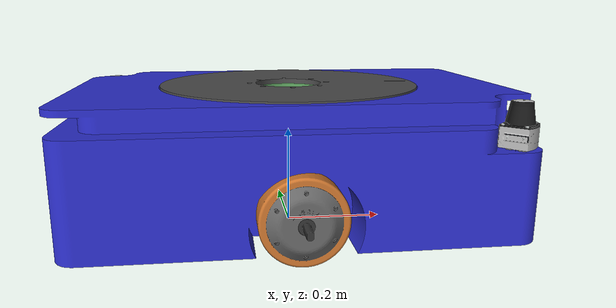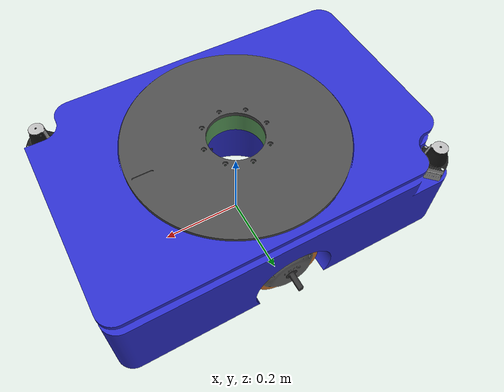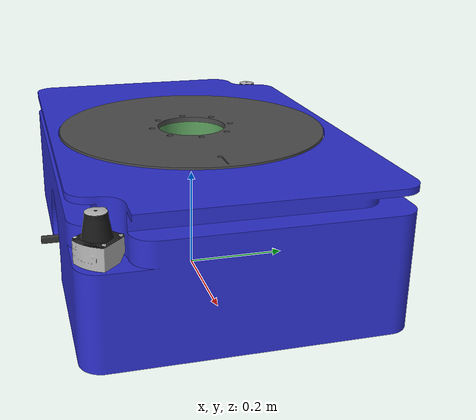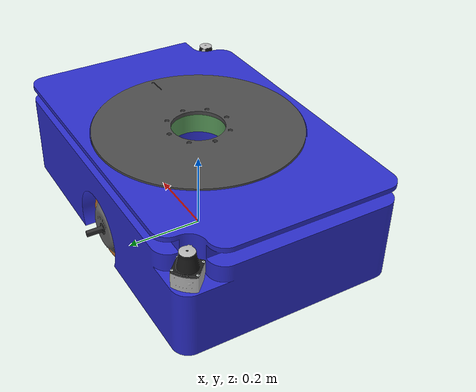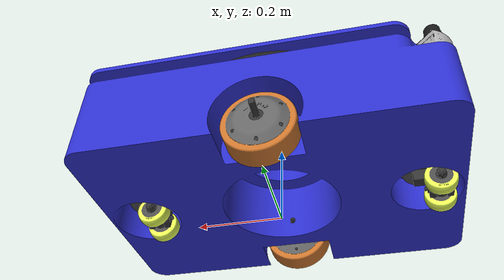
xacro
<?xml version="1.0"?>
<robot name="thirabot_k10" xmlns:xacro="http://www.ros.org/wiki/xacro">

    <xacro:include filename="$(find k3_test_description)/urdf/gazebo.urdf.xacro"/>
    <xacro:include filename="$(find k3_test_description)/urdf/inertia_macro.urdf.xacro"/>
    <xacro:include filename="$(find k3_test_description)/urdf/insert_transmission.urdf.xacro"/>

    <link name="base_footprint"/>
    <link name="base_link">
        <visual>
            <origin xyz="0 0 0" rpy="0 0 0"/>
            <geometry>
                <mesh filename="package://k3_test_description/meshes/main_frame.dae" scale="1 1 1"/>
            </geometry>
        </visual>
        <collision>
            <origin xyz="0 0 0" rpy="0 0 0"/>
            <geometry>
                <mesh filename="package://k3_test_description/meshes/main_frame.dae" scale="1 1 1"/>
            </geometry>
        </collision>
        <inertial>
            <origin xyz="0 0 0" rpy="0 0 0"/>
            <mass value="80.0"/>
            <inertia ixx="2.38222598299" ixy="-0.05739554441" ixz="-0.00191389514" iyy="5.177315735" iyz="-0.0016813482" izz="6.73941100954"/>
        </inertial>
    </link>

    <joint name="base_link_fixed" type="fixed">
        <parent link="base_footprint"/>
        <child link="base_link"/>
        <origin xyz="0 0 0.0825" rpy="0 0 0"/>
    </joint>

    <xacro:macro name="insert_main_wheel" params="prefix dir">
        <link name="${prefix}_wheel_fixed_axis">
            <visual>
                <origin xyz="0 0 0" rpy="0 0 ${dir * -90*pi/180}"/>
                <geometry>
                    <mesh filename="package://k3_test_description/meshes/main_wheel_axis.dae" scale="1 1 1"/>
                </geometry>
            </visual>
            <collision>
                <origin xyz="0 0 0" rpy="0 0 ${dir * -90*pi/180}"/>
                <geometry>
                    <mesh filename="package://k3_test_description/meshes/main_wheel_axis.dae" scale="1 1 1"/>
                </geometry>
            </collision>
            <inertial>
                <origin xyz="-0.005351 0 0" rpy="0 0 ${dir * -90*pi/180}"/>
                <mass value="1.0"/>
                <inertia ixx="0.000051226" ixy="0.0" ixz="0.0" iyy="0.001861631" iyz="0.0" izz="0.001859351"/>
            </inertial>
        </link>

        <joint name="${prefix}_wheel_fixed_joint" type="fixed">
            <parent link="base_link"/>
            <child link="${prefix}_wheel_fixed_axis"/>
            <origin xyz="0 ${dir * 0.2245} 0" rpy="0 0 0"/>
        </joint>

        <link name="${prefix}_wheel">
            <visual>
                <origin xyz="0 0 0" rpy="0 0 ${dir * -90*pi/180}"/>
                <geometry>
                    <mesh filename="package://k3_test_description/meshes/main_wheel_body.dae" scale="1 1 1"/>
                </geometry>
            </visual>
            <collision>
                <origin xyz="0 0 0" rpy="0 0 ${dir * -90*pi/180}"/>
                <geometry>
                    <mesh filename="package://k3_test_description/meshes/main_wheel_body.dae" scale="1 1 1"/>
                </geometry>
            </collision>
            <inertial>
                <origin xyz="0 0 0" rpy="0 0 ${dir * -90*pi/180}"/>
                <mass value="12.0"/>
                <inertia ixx="0.037394" ixy="0.0" ixz="0.0" iyy="0.024470" iyz="0.0" izz="0.024470"/>
            </inertial>
        </link>

        <joint name="${prefix}_wheel_joint" type="continuous">
            <parent link="${prefix}_wheel_fixed_axis"/>
            <child link="${prefix}_wheel"/>
            <axis xyz="0 1 0"/>
            <origin xyz="0 0 0" rpy="0 0 0"/>
        </joint>
        <xacro:insert_velocity_transmission name="${prefix}_wheel_joint"/>
    </xacro:macro>

    <xacro:insert_main_wheel prefix="l" dir="1"/>
    <xacro:insert_main_wheel prefix="r" dir="-1"/>

    <xacro:macro name="insert_caster_wheel" params="prefix dir">
        <link name="${prefix}_caster_mount">
            <visual>
                <origin xyz="0 0 0" rpy="0 0 0"/>
                <geometry>
                    <mesh filename="package://k3_test_description/meshes/caster_mount.dae" scale="1 1 1"/>
                </geometry>
            </visual>
            <collision>
                <origin xyz="0 0 0" rpy="0 0 0"/>
                <geometry>
                    <mesh filename="package://k3_test_description/meshes/caster_mount.dae" scale="1 1 1"/>
                </geometry>
            </collision>
            <inertial>
                <origin xyz="0 0 -0.01" rpy="0 0 0"/>
                <mass value="1.579"/>
                <inertia ixx="0.00133437338" ixy="0.0" ixz="0.0" iyy="0.00133595613" iyz="0.0" izz="0.00254792224"/>
            </inertial>
        </link>

        <joint name="${prefix}_caster_mount_fixed" type="fixed">
            <parent link="base_link"/>
            <child link="${prefix}_caster_mount"/>
            <origin xyz="${dir * 0.3375} 0 0.0405" rpy="0 0 0"/>
        </joint>

        <link name="${prefix}_caster_rotate">
            <visual>
                <origin xyz="0 0 0" rpy="0 0 0"/>
                <geometry>
                    <mesh filename="package://k3_test_description/meshes/caster_rotate.dae" scale="1 1 1"/>
                </geometry>
            </visual>
            <collision>
                <origin xyz="0 0 0" rpy="0 0 0"/>
                <geometry>
                    <mesh filename="package://k3_test_description/meshes/caster_rotate.dae" scale="1 1 1"/>
                </geometry>
            </collision>
            <inertial>
                <origin xyz="-0.006856 0 -0.022825" rpy="0 0 0"/>
                <mass value="1.824"/>
                <inertia ixx="0.00162071448" ixy="0.0" ixz="0.0" iyy="0.00210140087" iyz="0.0" izz="0.00205468149"/>
            </inertial>
        </link>

        <joint name="${prefix}_caster_rotate_joint" type="continuous">
            <parent link="${prefix}_caster_mount"/>
            <child link="${prefix}_caster_rotate"/>
            <axis xyz="0 0 1"/>
            <origin xyz="0 0 -0.022" rpy="0 0 0"/>
        </joint>

        <link name="${prefix}_caster_tilt">
            <visual>
                <origin xyz="0 0 0" rpy="0 0 0"/>
                <geometry>
                    <mesh filename="package://k3_test_description/meshes/caster_tilt.dae" scale="1 1 1"/>
                </geometry>
            </visual>
            <collision>
                <origin xyz="0 0 0" rpy="0 0 0"/>
                <geometry>
                    <mesh filename="package://k3_test_description/meshes/caster_tilt.dae" scale="1 1 1"/>
                </geometry>
            </collision>
            <inertial>
                <origin xyz="0 0 0" rpy="0 0 0"/>
                <mass value="0.319"/>
                <inertia ixx="0.00039368351" ixy="0.0" ixz="0.0" iyy="0.00002810787" iyz="0.0" izz="0.00038530588"/>
            </inertial>
        </link>

        <joint name="${prefix}_caster_tilt_joint" type="revolute">
            <parent link="${prefix}_caster_rotate"/>
            <child link="${prefix}_caster_tilt"/>
            <axis xyz="1 0 0"/>
            <origin xyz="-0.030 0 -0.0635" rpy="0 0 0"/>
            <limit effort="100" velocity="1.0" lower="${-5*pi/180}" upper="${5*pi/180}"/>
        </joint>

        <link name="${prefix}_caster_wheel1">
            <visual>
                <origin xyz="0 0 0" rpy="0 0 ${90*pi/180}"/>
                <geometry>
                    <mesh filename="package://k3_test_description/meshes/caster_wheel.dae" scale="1 1 1"/>
                </geometry>
            </visual>
            <collision>
                <origin xyz="0 0 0" rpy="0 0 ${90*pi/180}"/>
                <geometry>
                    <mesh filename="package://k3_test_description/meshes/caster_wheel.dae" scale="1 1 1"/>
                </geometry>
            </collision>
            <inertial>
                <origin xyz="0 0 0" rpy="0 0 ${90*pi/180}"/>
                <mass value="0.936"/>
                <inertia ixx="0.00065654885" ixy="0.0" ixz="0.0" iyy="0.00039382798" iyz="0.0" izz="0.00039372956"/>
            </inertial>
        </link>

        <joint name="${prefix}_caster_wheel1_joint" type="continuous">
            <parent link="${prefix}_caster_tilt"/>
            <child link="${prefix}_caster_wheel1"/>
            <axis xyz="0 1 0"/>
            <origin xyz="0 -0.034 0" rpy="0 0 0"/>
        </joint>

        <link name="${prefix}_caster_wheel2">
            <visual>
                <origin xyz="0 0 0" rpy="0 0 ${-90*pi/180}"/>
                <geometry>
                    <mesh filename="package://k3_test_description/meshes/caster_wheel.dae" scale="1 1 1"/>
                </geometry>
            </visual>
            <collision>
                <origin xyz="0 0 0" rpy="0 0 ${-90*pi/180}"/>
                <geometry>
                    <mesh filename="package://k3_test_description/meshes/caster_wheel.dae" scale="1 1 1"/>
                </geometry>
            </collision>
            <inertial>
                <origin xyz="0 0 0" rpy="0 0 ${-90*pi/180}"/>
                <mass value="0.936"/>
                <inertia ixx="0.00065654885" ixy="0.0" ixz="0.0" iyy="0.00039382798" iyz="0.0" izz="0.00039372956"/>
            </inertial>
        </link>

        <joint name="${prefix}_caster_wheel2_joint" type="continuous">
            <parent link="${prefix}_caster_tilt"/>
            <child link="${prefix}_caster_wheel2"/>
            <axis xyz="0 1 0"/>
            <origin xyz="0 0.034 0" rpy="0 0 0"/>
        </joint>
    </xacro:macro>

    <xacro:insert_caster_wheel prefix="f" dir="1"/>
    <xacro:insert_caster_wheel prefix="r" dir="-1"/>

    <xacro:macro name="insert_lidar_link" params="prefix dir">
        <link name="${prefix}_lidar_mount">
            <visual>
                <origin xyz="0 0 0" rpy="0 0 0"/>
                <geometry>
                    <mesh filename="package://k3_test_description/meshes/sick_tim5series.dae" scale="1 1 1"/>
                </geometry>
            </visual>
            <collision>
                <origin xyz="0 0 0.0429" rpy="0 0 0"/>
                <geometry>
                    <cylinder radius="0.03" length="0.0858"/>
                </geometry>
            </collision>
            <inertial>
                <origin xyz="-0.003 0 0.03288" rpy="0 0 0"/>
                <mass value="1.639"/>
                <inertia ixx="0.00115131613" ixy="0.0" ixz="0.0" iyy="0.00119095223" iyz="0.0" izz="0.00079335523"/>
            </inertial>
        </link>

        <joint name="${prefix}_lidar_mount_fixed" type="fixed">
            <parent link="base_link"/>
            <child link="${prefix}_lidar_mount"/>
            <origin xyz="${dir*0.386743} ${dir*-0.241743} 0.1225" rpy="0 0 ${(45-(dir*90))*pi/180}"/>
        </joint>

        <link name="${prefix}_lidar"/>
        <joint name="${prefix}_lidar_fixed" type="fixed">
            <parent link="${prefix}_lidar_mount"/>
            <child link="${prefix}_lidar"/>
            <origin xyz="-0.001 0 0.06246" rpy="0 0 0"/>
        </joint>
    </xacro:macro>

    <xacro:insert_lidar_link prefix="front" dir="1"/>
    <xacro:insert_lidar_link prefix="rear" dir="-1"/>

    <link name="top_lift_link">
        <visual>
            <origin xyz="0 0 0" rpy="0 0 0"/>
            <geometry>
                <mesh filename="package://k3_test_description/meshes/top_lift.dae" scale="1 1 1"/>
            </geometry>
        </visual>
        <collision>
            <origin xyz="0 0 0" rpy="0 0 0"/>
            <geometry>
                <mesh filename="package://k3_test_description/meshes/top_lift.dae" scale="1 1 1"/>
            </geometry>
        </collision>
        <inertial>
            <origin xyz="0 0 0.024915" rpy="0 0 0"/>
            <mass value="4.899"/>
            <inertia ixx="0.1708252641" ixy="0.0" ixz="0.0" iyy="0.1708252641" iyz="0.0" izz="0.03212389119"/>
        </inertial>
    </link>

    <joint name="top_lift_joint" type="prismatic">
        <parent link="base_link"/>
        <child link="top_lift_link"/>
        <axis xyz="0 0 1"/>
        <origin xyz="0 0 0.1555" rpy="0 0 0"/>
        <limit effort="1000" velocity="0.05" lower="0" upper="0.045"/>
    </joint>
    <xacro:insert_position_transmission name="top_lift_joint"/>

    <link name="top_turn_link">
        <visual>
            <origin xyz="0 0 0" rpy="0 0 0"/>
            <geometry>
                <mesh filename="package://k3_test_description/meshes/top_turn.dae" scale="1 1 1"/>
            </geometry>
        </visual>
        <collision>
            <origin xyz="0 0 0" rpy="0 0 0"/>
            <geometry>
                <mesh filename="package://k3_test_description/meshes/top_turn.dae" scale="1 1 1"/>
            </geometry>
        </collision>
        <inertial>
            <origin xyz="0 0 0.004993" rpy="0 0 0"/>
            <mass value="15.496"/>
            <inertia ixx="0.28045670659" ixy="0.0" ixz="0.0" iyy="0.27999536295" iyz="0.0" izz="0.56019388486"/>
        </inertial>
    </link>

    <joint name="top_turn_joint" type="revolute">
        <parent link="top_lift_link"/>
        <child link="top_turn_link"/>
        <axis xyz="0 0 1"/>
        <origin xyz="0 0 0.05" rpy="0 0 0"/>
        <limit effort="100" velocity="0.6" lower="${-4*pi}" upper="${4*pi}"/>
    </joint>
    <xacro:insert_position_transmission name="top_turn_joint"/>
</robot>
